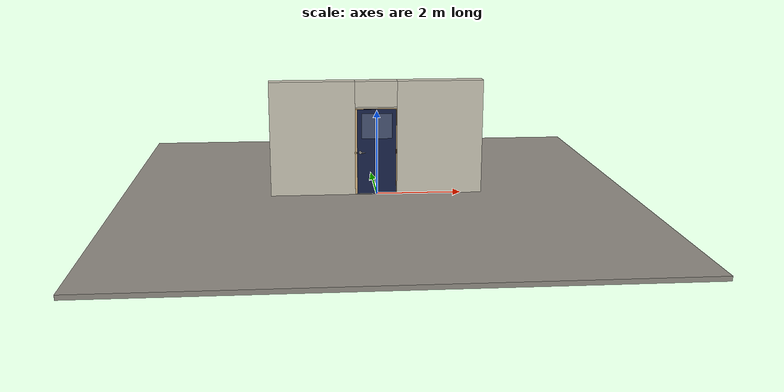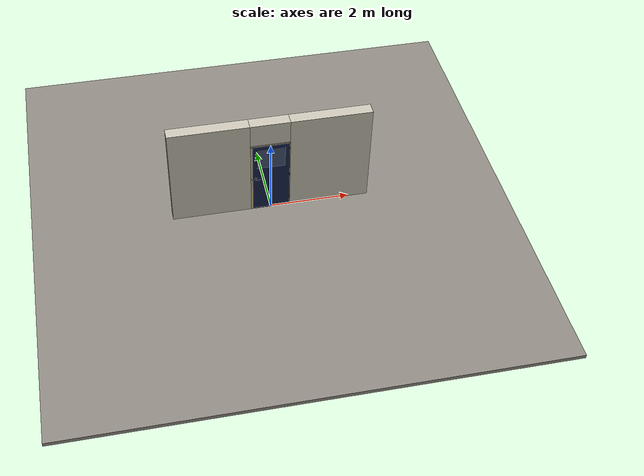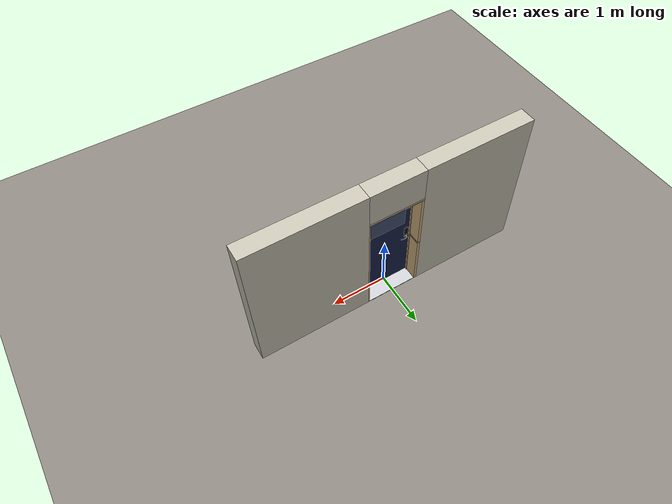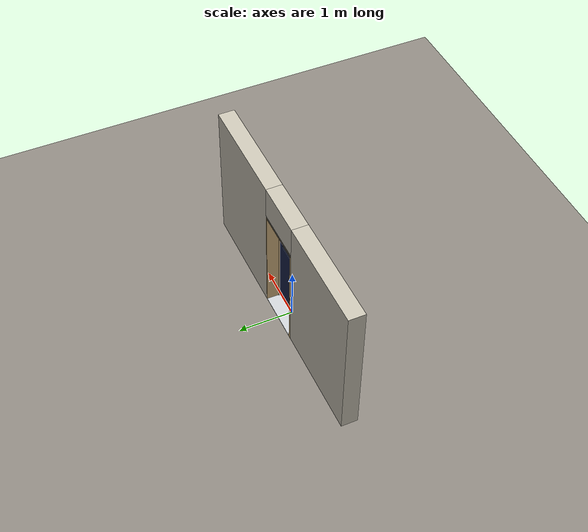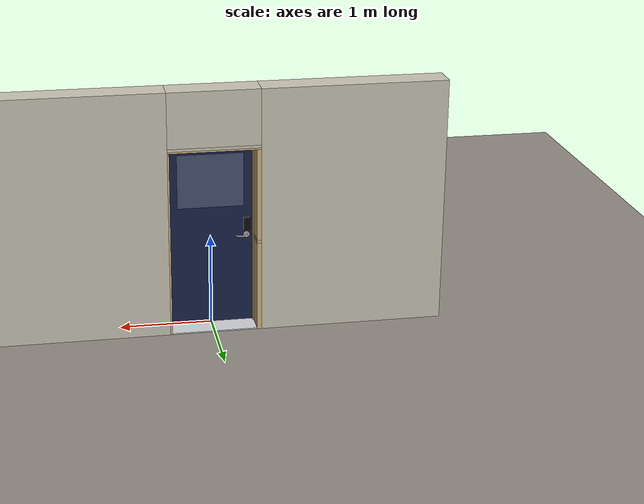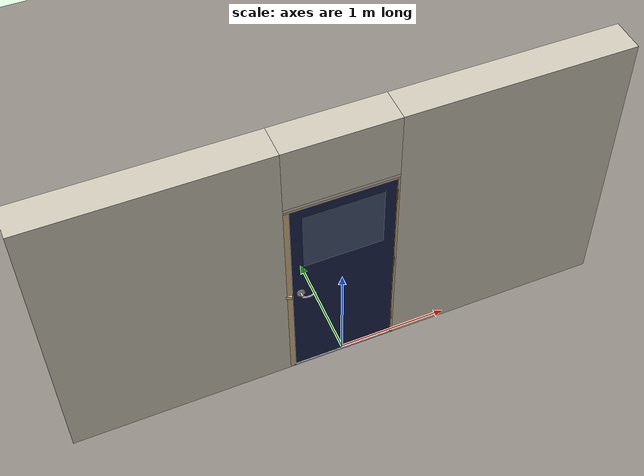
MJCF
<?xml version="1.0" ?>
<mujoco model="db0878_swing_single_simple">
  <compiler angle="radian" meshdir="../../hardware" texturedir="../../textures" autolimits="true" inertiafromgeom="false"/>
  <option timestep="0.002" integrator="implicitfast" cone="elliptic" impratio="10" noslip_iterations="3">
    <flag multiccd="enable"/>
  </option>
  <size memory="16M"/>
  <default>
    <geom condim="4" solref="0.005 1" solimp="0.95 0.99 0.001"/>
    <joint solreflimit="0.005 1" solimplimit="0.95 0.99 0.001"/>
    <tendon solreflimit="0.005 1"/>
    <equality solref="0.002 1"/>
  </default>
  <visual>
    <headlight ambient="0.4 0.4 0.4" diffuse="0.7 0.7 0.7" specular="0.2 0.2 0.2"/>
    <quality shadowsize="4096"/>
    <map znear="0.01" zfar="60"/>
  </visual>
  <asset>
    <mesh name="hinge_e22b26c0c1" file="hinge_e22b26c0c1.obj"/>
    <mesh name="hinge_jamb_e1d088f8dc" file="hinge_jamb_e1d088f8dc.obj"/>
    <mesh name="keypad_body_3b2d063948" file="keypad_body_3b2d063948.obj"/>
    <mesh name="lever_a61139b160" file="lever_a61139b160.obj"/>
    <material name="mat_floor" rgba="0.55 0.53 0.5 1" specular="0.2" shininess="0.15" reflectance="0"/>
    <material name="mat_wall" rgba="0.78 0.76 0.7 1" specular="0.2" shininess="0.1" reflectance="0"/>
    <material name="mat_leaf" rgba="0.09 0.13 0.28 1" specular="0.2" shininess="0.62" reflectance="0"/>
    <material name="mat_glass" rgba="0.85 0.92 0.95 0.25" specular="0.2" shininess="0.95" reflectance="0.1"/>
    <material name="mat_hinge" rgba="0.45 0.3 0.22 1" specular="0.5" shininess="0.1" reflectance="0.2"/>
    <material name="mat_op_nickel_satin" rgba="0.72 0.7 0.66 1" specular="0.8" shininess="0.65" reflectance="0.4"/>
    <material name="mat_trim" rgba="0.85 0.66 0.3 1" specular="0.8" shininess="0.75" reflectance="0.4"/>
    <material name="mat_keypad" rgba="0.05 0.05 0.05 1" specular="0.38" shininess="0.3" reflectance="0.12"/>
    <material name="mat_key" rgba="0.85 0.85 0.82 1" specular="0.2" shininess="0.5" reflectance="0"/>
    <material name="mat_bolt" rgba="0.85 0.66 0.3 1" specular="0.8" shininess="0.75" reflectance="0.4"/>
    <material name="mat_frame" rgba="0.82 0.7 0.5 1" specular="0.2" shininess="0.45" reflectance="0"/>
    <material name="mat_seal" rgba="0.1 0.1 0.1 1" specular="0.2" shininess="0.1" reflectance="0"/>
    <material name="mat_threshold" rgba="0.8 0.81 0.83 1" specular="0.8" shininess="0.6" reflectance="0.4"/>
    <material name="mat_drip" rgba="0.8 0.81 0.83 1" specular="0.8" shininess="0.6" reflectance="0.4"/>
    <texture name="skybox" type="skybox" builtin="gradient" rgb1="0.6 0.7 0.85" rgb2="0.9 0.92 0.95" width="256" height="256"/>
  </asset>
  <worldbody>
    <light name="sun" pos="1.5 -2.5 4" dir="-0.3 0.5 -0.8" directional="true" diffuse="0.8 0.8 0.8" specular="0.3 0.3 0.3" castshadow="true"/>
    <light name="fill" pos="-1.5 2.5 3" dir="0.3 -0.5 -0.7" directional="true" diffuse="0.35 0.35 0.4" castshadow="false"/>
    <camera name="robot_view" pos="0 -2.421187 1.734312" xyaxes="1 0 0 0 0.26963 0.962964" fovy="52"/>
    <camera name="far_view" pos="0 2.663187 1.734312" xyaxes="-1 0 0 0 -0.26963 0.962964" fovy="52"/>
    <camera name="iso" pos="-1.932062 -2.014438 2.141063" xyaxes="0.741536 -0.670913 0 0.242917 0.268487 0.932151" fovy="46"/>
    <camera name="detail_handle" pos="-0.1169 -0.877 1.296" xyaxes="0.97561 0.219512 0 -0.070934 0.315262 0.94635" fovy="38"/>
    <geom name="floor" type="box" size="6 6 0.05" pos="0 0 -0.05" material="mat_floor" group="0" contype="1" conaffinity="1" friction="0.8 0.005 0.0001" density="2400"/>
    <geom name="wall_left" type="box" size="0.99525 0.15 1.35" pos="-1.50475 0.121 1.35" material="mat_wall" group="0" contype="1" conaffinity="1" friction="0.6 0.005 0.0001" density="800"/>
    <geom name="wall_right" type="box" size="1.01025 0.15 1.35" pos="1.48975 0.121 1.35" material="mat_wall" group="0" contype="1" conaffinity="1" friction="0.6 0.005 0.0001" density="800"/>
    <geom name="wall_header" type="box" size="0.4945 0.15 0.303" pos="-0.015 0.121 2.397" material="mat_wall" group="0" contype="1" conaffinity="1" friction="0.6 0.005 0.0001" density="800"/>
    <geom name="hinge_0_jamb" type="mesh" mesh="hinge_jamb_e1d088f8dc" pos="0.4575 -0.029 0.267" quat="0 0 1 0" material="mat_hinge" group="1" contype="0" conaffinity="0" density="7850"/>
    <geom name="hinge_1_jamb" type="mesh" mesh="hinge_jamb_e1d088f8dc" pos="0.4575 -0.029 1.029" quat="0 0 1 0" material="mat_hinge" group="1" contype="0" conaffinity="0" density="7850"/>
    <geom name="hinge_2_jamb" type="mesh" mesh="hinge_jamb_e1d088f8dc" pos="0.4575 -0.029 1.861" quat="0 0 1 0" material="mat_hinge" group="1" contype="0" conaffinity="0" density="7850"/>
    <geom name="jamb_hinge" type="box" size="0.0095 0.15 1.0225" pos="0.47 0.121 1.0225" material="mat_frame" group="0" contype="1" conaffinity="1" friction="0.6 0.005 0.0001" density="400"/>
    <geom name="strike_1016_wall_n" type="box" size="0.0245 0.131575 0.0167" pos="-0.485 0.139425 1.016" material="mat_frame" group="0" contype="1" conaffinity="1" friction="0.6 0.005 0.0001" density="400"/>
    <geom name="strike_1016_wall_p" type="box" size="0.0245 0.008 0.0167" pos="-0.485 -0.01585 1.016" material="mat_frame" group="0" contype="1" conaffinity="1" friction="0.6 0.005 0.0001" density="400"/>
    <geom name="strike_1016_ramp" type="box" size="0.0245 0.01649 0.0167" pos="-0.489636 -0.028673 1.016" quat="0.977148 0 0 -0.212558" material="mat_frame" group="0" contype="1" conaffinity="1" friction="0.12 0.005 0.0001" density="400"/>
    <geom name="strike_1016_back" type="box" size="0.01615 0.00785 0.0167" pos="-0.49335 0 1.016" material="mat_frame" group="0" contype="1" conaffinity="1" friction="0.6 0.005 0.0001" density="400"/>
    <geom name="jamb_strike_0" type="box" size="0.0245 0.15 0.49965" pos="-0.485 0.121 0.49965" material="mat_frame" group="0" contype="1" conaffinity="1" friction="0.6 0.005 0.0001" density="400"/>
    <geom name="jamb_strike_1" type="box" size="0.0245 0.15 0.50615" pos="-0.485 0.121 1.53885" material="mat_frame" group="0" contype="1" conaffinity="1" friction="0.6 0.005 0.0001" density="400"/>
    <geom name="jamb_head" type="box" size="0.4945 0.15 0.0095" pos="-0.015 0.121 2.0545" material="mat_frame" group="0" contype="1" conaffinity="1" friction="0.6 0.005 0.0001" density="400"/>
    <geom name="head_stud" type="box" size="0.4945 0.15 0.015" pos="-0.015 0.121 2.079" material="mat_wall" group="0" contype="1" conaffinity="1" friction="0.6 0.005 0.0001" density="500"/>
    <geom name="stop_hinge" type="box" size="0.0055 0.016 1.0225" pos="0.455 0.0385 1.0225" material="mat_frame" group="0" contype="1" conaffinity="1" friction="0.6 0.005 0.0001" density="400"/>
    <geom name="stop_strike" type="box" size="0.0055 0.016 1.0225" pos="-0.455 0.0385 1.0225" material="mat_frame" group="0" contype="1" conaffinity="1" friction="0.6 0.005 0.0001" density="400"/>
    <geom name="stop_head" type="box" size="0.4605 0.016 0.0055" pos="0 0.0385 2.0395" material="mat_frame" group="0" contype="1" conaffinity="1" friction="0.6 0.005 0.0001" density="400"/>
    <geom name="seal_hinge" type="box" size="0.004 0.0015 1.0225" pos="0.4575 0.0235 1.0225" material="mat_seal" group="1" contype="0" conaffinity="0" density="1100"/>
    <geom name="seal_strike" type="box" size="0.004 0.0015 1.0225" pos="-0.4575 0.0235 1.0225" material="mat_seal" group="1" contype="0" conaffinity="0" density="1100"/>
    <geom name="seal_head" type="box" size="0.4405 0.0015 0.008" pos="0 0.0235 2.033" material="mat_seal" group="1" contype="0" conaffinity="0" density="1100"/>
    <geom name="threshold" type="box" size="0.4795 0.15 0.0065" pos="0 0.121 0.0065" material="mat_threshold" group="0" contype="1" conaffinity="1" friction="0.5 0.005 0.0001" density="2700"/>
    <site name="approach_point" pos="0 -1.5 0" quat="1 0 0 0" size="0.05" rgba="0.2 0.9 0.2 0.5" group="4"/>
    <site name="goal_point" pos="0 1.5 0" quat="1 0 0 0" size="0.05" rgba="0.2 0.9 0.2 0.5" group="4"/>
    <site name="door_plane_center" pos="0 0 1.0225" quat="1 0 0 0" size="0.02" rgba="0.2 0.9 0.2 0.5" group="4"/>
    <body name="leaf" pos="0.4605 0 0">
      <inertial pos="-0.452325 0.000023 1.032483" mass="27.888101" quat="0.501313 0.497759 -0.502156 0.498758" diaginertia="2.12516692 9.41904057 11.53366141"/>
      <joint name="leaf_hinge" type="hinge" axis="0 0 1" pos="-0.003 -0.029 0" limited="true" range="0 1.570796" solreflimit="0.02 1" damping="0.30611" frictionloss="2.621469" armature="0.02"/>
      <geom name="leaf_slab" type="box" size="0.457 0.022 1.012" pos="-0.46 0 1.029" material="mat_leaf" group="0" contype="1" conaffinity="1" friction="0.4 0.005 0.0001" density="1"/>
      <geom name="leaf_glass_0" type="box" size="0.35646 0.0228 0.297528" pos="-0.46 0 1.642272" material="mat_glass" group="1" contype="0" conaffinity="0" density="1"/>
      <geom name="hinge_0" type="mesh" mesh="hinge_e22b26c0c1" pos="-0.003 -0.029 0.267" quat="0 0 1 0" material="mat_hinge" group="1" contype="0" conaffinity="0" density="7850"/>
      <geom name="hinge_1" type="mesh" mesh="hinge_e22b26c0c1" pos="-0.003 -0.029 1.029" quat="0 0 1 0" material="mat_hinge" group="1" contype="0" conaffinity="0" density="7850"/>
      <geom name="hinge_2" type="mesh" mesh="hinge_e22b26c0c1" pos="-0.003 -0.029 1.861" quat="0 0 1 0" material="mat_hinge" group="1" contype="0" conaffinity="0" density="7850"/>
      <geom name="leaf_keypad_body" type="mesh" mesh="keypad_body_3b2d063948" pos="-0.847 0.022 1.136" quat="0 0 0.707107 0.707107" material="mat_keypad" group="0" contype="1" conaffinity="1" friction="0.6 0.005 0.0001" density="2000"/>
      <geom name="leaf_latch_bolt_faceplate" type="box" size="0.0006 0.01235 0.0267" pos="-0.9164 0 1.016" material="mat_bolt" group="1" contype="0" conaffinity="0" density="8500"/>
      <site name="leaf_edge_mid" pos="-0.917 0 1.012" quat="1 0 0 0" size="0.02" rgba="0.2 0.9 0.2 0.5" group="4"/>
      <body name="leaf_handle" pos="-0.847 0 1.016">
        <inertial pos="0.025007 -0.057273 0" mass="0.41" quat="0.235955 0 0 0.971764" diaginertia="0.000156759 0.000717302 0.000791484"/>
        <joint name="leaf_handle_hinge" type="hinge" axis="0 1 0" limited="true" range="0 0.87" damping="0.208392" frictionloss="0.052" stiffness="1" springref="-0.35" armature="0.01"/>
        <geom name="leaf_handle_lever_n" type="mesh" mesh="lever_a61139b160" pos="0 -0.022 0" quat="0 0 -0.707107 0.707107" material="mat_op_nickel_satin" group="1" contype="0" conaffinity="0" density="3000"/>
        <geom name="leaf_handle_lever_col_n" type="capsule" size="0.008 0.048" pos="0.056 -0.077 0" quat="0.707107 0 0.707107 0" material="mat_op_nickel_satin" group="3" contype="1" conaffinity="1" rgba="0.8 0.3 0.3 0.25" friction="0.7 0.01 0.0001" density="3000"/>
        <geom name="leaf_handle_hub_col_n" type="cylinder" size="0.012 0.022" pos="0 -0.052 0" quat="0.707107 -0.707107 0 0" material="mat_op_nickel_satin" group="3" contype="1" conaffinity="1" rgba="0.8 0.3 0.3 0.25" friction="0.6 0.005 0.0001" density="3000"/>
        <site name="leaf_handle_grip_n" pos="0.0896 -0.077 0" quat="1 0 0 0" size="0.012" rgba="0.2 0.9 0.2 0.5" group="4"/>
      </body>
      <body name="leaf_handle_out" pos="-0.847 0 1.016">
        <inertial pos="0.025007 0.057273 0" mass="0.41" quat="-0.235955 0 0 0.971764" diaginertia="0.000156759 0.000717302 0.000791484"/>
        <joint name="leaf_handle_out_hinge" type="hinge" axis="0 1 0" limited="true" range="0 0.87" damping="0.208382" frictionloss="0.052" stiffness="1" springref="-0.35" armature="0.01"/>
        <geom name="leaf_handle_out_lever_p" type="mesh" mesh="lever_a61139b160" pos="0 0.022 0" quat="0 0 0.707107 0.707107" material="mat_op_nickel_satin" group="1" contype="0" conaffinity="0" density="3000"/>
        <geom name="leaf_handle_out_lever_col_p" type="capsule" size="0.008 0.048" pos="0.056 0.077 0" quat="0.707107 0 0.707107 0" material="mat_op_nickel_satin" group="3" contype="1" conaffinity="1" rgba="0.8 0.3 0.3 0.25" friction="0.7 0.01 0.0001" density="3000"/>
        <geom name="leaf_handle_out_hub_col_p" type="cylinder" size="0.012 0.022" pos="0 0.052 0" quat="0.707107 -0.707107 0 0" material="mat_op_nickel_satin" group="3" contype="1" conaffinity="1" rgba="0.8 0.3 0.3 0.25" friction="0.6 0.005 0.0001" density="3000"/>
        <site name="leaf_handle_out_grip_p" pos="0.0896 0.077 0" quat="1 0 0 0" size="0.012" rgba="0.2 0.9 0.2 0.5" group="4"/>
      </body>
      <body name="leaf_latch_bolt" pos="-0.917 0 1.016">
        <inertial pos="0.00865 0 0" mass="0.041419" quat="0.92388 0.382683 0 0" diaginertia="0.000000798 0.000005598 0.000005598"/>
        <joint name="leaf_latch_bolt_slide" type="slide" axis="1 0 0" limited="true" range="0 0.0127" damping="2" frictionloss="0.3" stiffness="300" springref="-0.008333" armature="0.1"/>
        <geom name="leaf_latch_bolt_capsule" type="capsule" size="0.00635 0.015" pos="0.00865 0 0" quat="0.707107 0 -0.707107 0" material="mat_bolt" group="0" contype="1" conaffinity="1" friction="0.2 0.005 0.0001" density="8500"/>
      </body>
    </body>
  </worldbody>
  <tendon>
    <fixed name="leaf_latch_bolt_coupling" limited="true" range="0 10">
      <joint joint="leaf_latch_bolt_slide" coef="1"/>
      <joint joint="leaf_handle_hinge" coef="-0.015679"/>
      <joint joint="leaf_handle_out_hinge" coef="-0.015679"/>
    </fixed>
  </tendon>
  <sensor>
    <jointpos name="leaf_hinge_pos" joint="leaf_hinge"/>
    <jointvel name="leaf_hinge_vel" joint="leaf_hinge"/>
    <jointpos name="leaf_handle_hinge_pos" joint="leaf_handle_hinge"/>
    <jointvel name="leaf_handle_hinge_vel" joint="leaf_handle_hinge"/>
    <jointpos name="leaf_handle_out_hinge_pos" joint="leaf_handle_out_hinge"/>
    <jointvel name="leaf_handle_out_hinge_vel" joint="leaf_handle_out_hinge"/>
    <jointpos name="leaf_latch_bolt_slide_pos" joint="leaf_latch_bolt_slide"/>
    <jointvel name="leaf_latch_bolt_slide_vel" joint="leaf_latch_bolt_slide"/>
  </sensor>
</mujoco>
